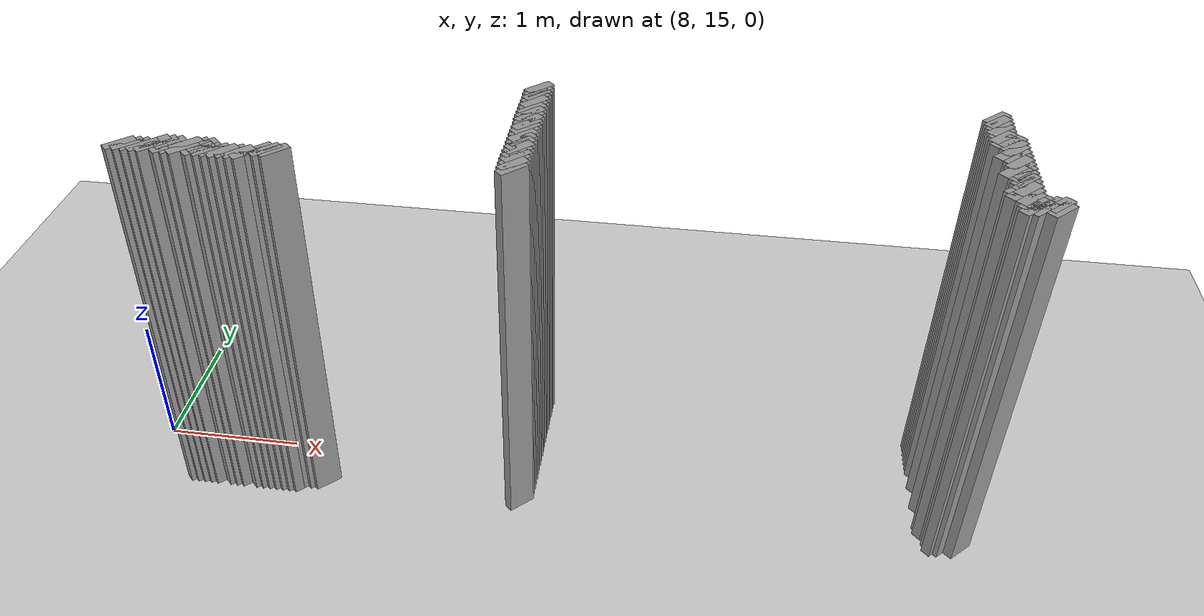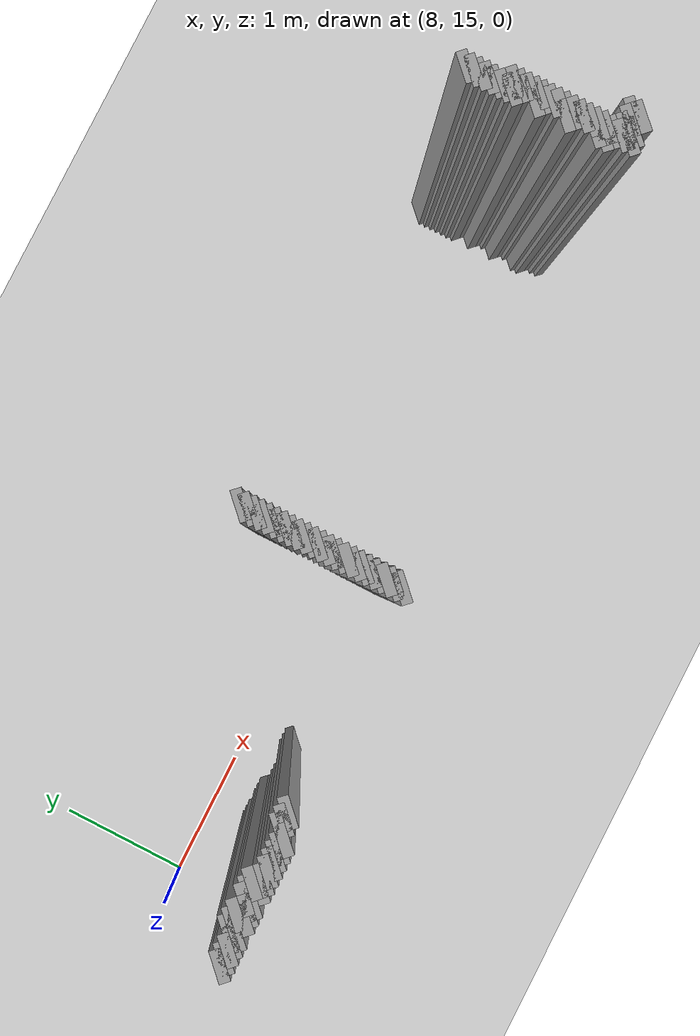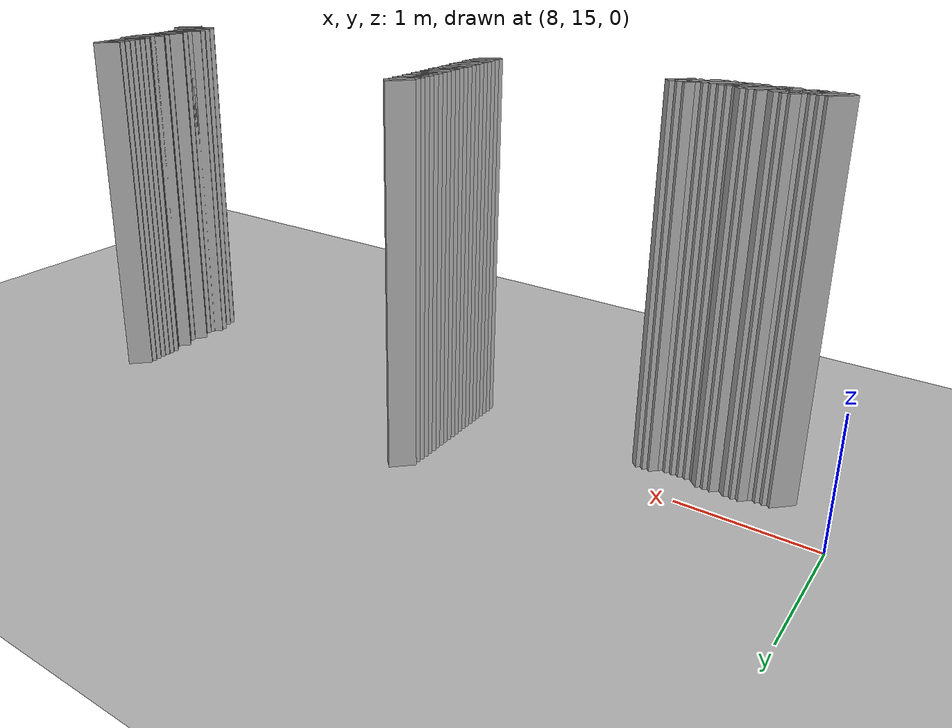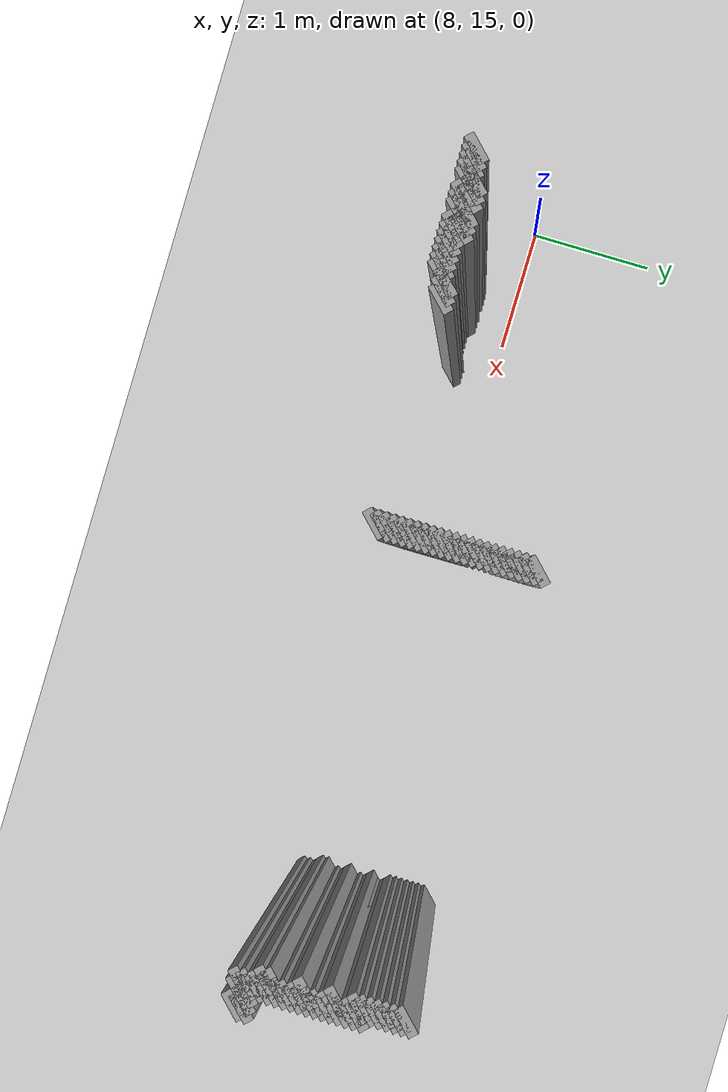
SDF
<sdf version="1.5">
 <world name="default">
  <include><uri>model://ground_plane</uri></include>
  <include><uri>model://sun</uri></include>
  <model name="grey_wall_545">
   <static>1</static>
   <link name="link">
    <pose>10.8 15.7  1.4 0 0 -0.785398163397</pose>
    <collision name="collision"><geometry><box><size>0.0707106781187 .2  2.8</size></box></geometry></collision>
    <visual name="visual">
     <cast_shadows>0</cast_shadows>
     <geometry><box><size>0.0707106781187 .2  2.8</size></box></geometry>
     <material>
      <script>
       <uri>model://grey_wall/materials/scripts</uri>
       <uri>model://grey_wall/materials/textures</uri>
       <name>vrc/grey_wall</name>
      </script>
     </material>
    </visual>
   </link>
  </model>
  <model name="grey_wall_546">
   <static>1</static>
   <link name="link">
    <pose>13.7 15.7  1.4 0 0 -0.785398163397</pose>
    <collision name="collision"><geometry><box><size>0.0707106781187 .2  2.8</size></box></geometry></collision>
    <visual name="visual">
     <cast_shadows>0</cast_shadows>
     <geometry><box><size>0.0707106781187 .2  2.8</size></box></geometry>
     <material>
      <script>
       <uri>model://grey_wall/materials/scripts</uri>
       <uri>model://grey_wall/materials/textures</uri>
       <name>vrc/grey_wall</name>
      </script>
     </material>
    </visual>
   </link>
  </model>
  <model name="grey_wall_547">
   <static>1</static>
   <link name="link">
    <pose>10.8 15.65  1.4 0 0 -0.785398163397</pose>
    <collision name="collision"><geometry><box><size>0.0707106781187 .2  2.8</size></box></geometry></collision>
    <visual name="visual">
     <cast_shadows>0</cast_shadows>
     <geometry><box><size>0.0707106781187 .2  2.8</size></box></geometry>
     <material>
      <script>
       <uri>model://grey_wall/materials/scripts</uri>
       <uri>model://grey_wall/materials/textures</uri>
       <name>vrc/grey_wall</name>
      </script>
     </material>
    </visual>
   </link>
  </model>
  <model name="grey_wall_548">
   <static>1</static>
   <link name="link">
    <pose>13.7 15.65  1.4 0 0 -0.785398163397</pose>
    <collision name="collision"><geometry><box><size>0.0707106781187 .2  2.8</size></box></geometry></collision>
    <visual name="visual">
     <cast_shadows>0</cast_shadows>
     <geometry><box><size>0.0707106781187 .2  2.8</size></box></geometry>
     <material>
      <script>
       <uri>model://grey_wall/materials/scripts</uri>
       <uri>model://grey_wall/materials/textures</uri>
       <name>vrc/grey_wall</name>
      </script>
     </material>
    </visual>
   </link>
  </model>
  <model name="grey_wall_549">
   <static>1</static>
   <link name="link">
    <pose>10.8 15.6  1.4 0 0 -0.785398163397</pose>
    <collision name="collision"><geometry><box><size>0.0707106781187 .2  2.8</size></box></geometry></collision>
    <visual name="visual">
     <cast_shadows>0</cast_shadows>
     <geometry><box><size>0.0707106781187 .2  2.8</size></box></geometry>
     <material>
      <script>
       <uri>model://grey_wall/materials/scripts</uri>
       <uri>model://grey_wall/materials/textures</uri>
       <name>vrc/grey_wall</name>
      </script>
     </material>
    </visual>
   </link>
  </model>
  <model name="grey_wall_550">
   <static>1</static>
   <link name="link">
    <pose>13.7 15.6  1.4 0 0 -0.785398163397</pose>
    <collision name="collision"><geometry><box><size>0.0707106781187 .2  2.8</size></box></geometry></collision>
    <visual name="visual">
     <cast_shadows>0</cast_shadows>
     <geometry><box><size>0.0707106781187 .2  2.8</size></box></geometry>
     <material>
      <script>
       <uri>model://grey_wall/materials/scripts</uri>
       <uri>model://grey_wall/materials/textures</uri>
       <name>vrc/grey_wall</name>
      </script>
     </material>
    </visual>
   </link>
  </model>
  <model name="grey_wall_551">
   <static>1</static>
   <link name="link">
    <pose>10.8 15.55  1.4 0 0 -0.785398163397</pose>
    <collision name="collision"><geometry><box><size>0.0707106781187 .2  2.8</size></box></geometry></collision>
    <visual name="visual">
     <cast_shadows>0</cast_shadows>
     <geometry><box><size>0.0707106781187 .2  2.8</size></box></geometry>
     <material>
      <script>
       <uri>model://grey_wall/materials/scripts</uri>
       <uri>model://grey_wall/materials/textures</uri>
       <name>vrc/grey_wall</name>
      </script>
     </material>
    </visual>
   </link>
  </model>
  <model name="grey_wall_552">
   <static>1</static>
   <link name="link">
    <pose>13.7 15.55  1.4 0 0 -0.785398163397</pose>
    <collision name="collision"><geometry><box><size>0.0707106781187 .2  2.8</size></box></geometry></collision>
    <visual name="visual">
     <cast_shadows>0</cast_shadows>
     <geometry><box><size>0.0707106781187 .2  2.8</size></box></geometry>
     <material>
      <script>
       <uri>model://grey_wall/materials/scripts</uri>
       <uri>model://grey_wall/materials/textures</uri>
       <name>vrc/grey_wall</name>
      </script>
     </material>
    </visual>
   </link>
  </model>
  <model name="grey_wall_553">
   <static>1</static>
   <link name="link">
    <pose>10.8 15.5  1.4 0 0 -0.785398163397</pose>
    <collision name="collision"><geometry><box><size>0.0707106781187 .2  2.8</size></box></geometry></collision>
    <visual name="visual">
     <cast_shadows>0</cast_shadows>
     <geometry><box><size>0.0707106781187 .2  2.8</size></box></geometry>
     <material>
      <script>
       <uri>model://grey_wall/materials/scripts</uri>
       <uri>model://grey_wall/materials/textures</uri>
       <name>vrc/grey_wall</name>
      </script>
     </material>
    </visual>
   </link>
  </model>
  <model name="grey_wall_554">
   <static>1</static>
   <link name="link">
    <pose>13.7 15.5  1.4 0 0 -0.785398163397</pose>
    <collision name="collision"><geometry><box><size>0.0707106781187 .2  2.8</size></box></geometry></collision>
    <visual name="visual">
     <cast_shadows>0</cast_shadows>
     <geometry><box><size>0.0707106781187 .2  2.8</size></box></geometry>
     <material>
      <script>
       <uri>model://grey_wall/materials/scripts</uri>
       <uri>model://grey_wall/materials/textures</uri>
       <name>vrc/grey_wall</name>
      </script>
     </material>
    </visual>
   </link>
  </model>
  <model name="grey_wall_555">
   <static>1</static>
   <link name="link">
    <pose>10.8 15.45  1.4 0 0 -0.785398163397</pose>
    <collision name="collision"><geometry><box><size>0.0707106781187 .2  2.8</size></box></geometry></collision>
    <visual name="visual">
     <cast_shadows>0</cast_shadows>
     <geometry><box><size>0.0707106781187 .2  2.8</size></box></geometry>
     <material>
      <script>
       <uri>model://grey_wall/materials/scripts</uri>
       <uri>model://grey_wall/materials/textures</uri>
       <name>vrc/grey_wall</name>
      </script>
     </material>
    </visual>
   </link>
  </model>
  <model name="grey_wall_556">
   <static>1</static>
   <link name="link">
    <pose>13.7 15.45  1.4 0 0 -0.785398163397</pose>
    <collision name="collision"><geometry><box><size>0.0707106781187 .2  2.8</size></box></geometry></collision>
    <visual name="visual">
     <cast_shadows>0</cast_shadows>
     <geometry><box><size>0.0707106781187 .2  2.8</size></box></geometry>
     <material>
      <script>
       <uri>model://grey_wall/materials/scripts</uri>
       <uri>model://grey_wall/materials/textures</uri>
       <name>vrc/grey_wall</name>
      </script>
     </material>
    </visual>
   </link>
  </model>
  <model name="grey_wall_557">
   <static>1</static>
   <link name="link">
    <pose>10.8 15.4  1.4 0 0 -0.785398163397</pose>
    <collision name="collision"><geometry><box><size>0.0707106781187 .2  2.8</size></box></geometry></collision>
    <visual name="visual">
     <cast_shadows>0</cast_shadows>
     <geometry><box><size>0.0707106781187 .2  2.8</size></box></geometry>
     <material>
      <script>
       <uri>model://grey_wall/materials/scripts</uri>
       <uri>model://grey_wall/materials/textures</uri>
       <name>vrc/grey_wall</name>
      </script>
     </material>
    </visual>
   </link>
  </model>
  <model name="grey_wall_558">
   <static>1</static>
   <link name="link">
    <pose>13.7 15.4  1.4 0 0 -0.785398163397</pose>
    <collision name="collision"><geometry><box><size>0.0707106781187 .2  2.8</size></box></geometry></collision>
    <visual name="visual">
     <cast_shadows>0</cast_shadows>
     <geometry><box><size>0.0707106781187 .2  2.8</size></box></geometry>
     <material>
      <script>
       <uri>model://grey_wall/materials/scripts</uri>
       <uri>model://grey_wall/materials/textures</uri>
       <name>vrc/grey_wall</name>
      </script>
     </material>
    </visual>
   </link>
  </model>
  <model name="grey_wall_559">
   <static>1</static>
   <link name="link">
    <pose>13.75 15.4  1.4 0 0 -0.785398163397</pose>
    <collision name="collision"><geometry><box><size>0.0707106781187 .2  2.8</size></box></geometry></collision>
    <visual name="visual">
     <cast_shadows>0</cast_shadows>
     <geometry><box><size>0.0707106781187 .2  2.8</size></box></geometry>
     <material>
      <script>
       <uri>model://grey_wall/materials/scripts</uri>
       <uri>model://grey_wall/materials/textures</uri>
       <name>vrc/grey_wall</name>
      </script>
     </material>
    </visual>
   </link>
  </model>
  <model name="grey_wall_560">
   <static>1</static>
   <link name="link">
    <pose>10.8 15.35  1.4 0 0 -0.785398163397</pose>
    <collision name="collision"><geometry><box><size>0.0707106781187 .2  2.8</size></box></geometry></collision>
    <visual name="visual">
     <cast_shadows>0</cast_shadows>
     <geometry><box><size>0.0707106781187 .2  2.8</size></box></geometry>
     <material>
      <script>
       <uri>model://grey_wall/materials/scripts</uri>
       <uri>model://grey_wall/materials/textures</uri>
       <name>vrc/grey_wall</name>
      </script>
     </material>
    </visual>
   </link>
  </model>
  <model name="grey_wall_561">
   <static>1</static>
   <link name="link">
    <pose>13.75 15.35  1.4 0 0 -0.785398163397</pose>
    <collision name="collision"><geometry><box><size>0.0707106781187 .2  2.8</size></box></geometry></collision>
    <visual name="visual">
     <cast_shadows>0</cast_shadows>
     <geometry><box><size>0.0707106781187 .2  2.8</size></box></geometry>
     <material>
      <script>
       <uri>model://grey_wall/materials/scripts</uri>
       <uri>model://grey_wall/materials/textures</uri>
       <name>vrc/grey_wall</name>
      </script>
     </material>
    </visual>
   </link>
  </model>
  <model name="grey_wall_562">
   <static>1</static>
   <link name="link">
    <pose>10.8 15.3  1.4 0 0 -0.785398163397</pose>
    <collision name="collision"><geometry><box><size>0.0707106781187 .2  2.8</size></box></geometry></collision>
    <visual name="visual">
     <cast_shadows>0</cast_shadows>
     <geometry><box><size>0.0707106781187 .2  2.8</size></box></geometry>
     <material>
      <script>
       <uri>model://grey_wall/materials/scripts</uri>
       <uri>model://grey_wall/materials/textures</uri>
       <name>vrc/grey_wall</name>
      </script>
     </material>
    </visual>
   </link>
  </model>
  <model name="grey_wall_563">
   <static>1</static>
   <link name="link">
    <pose>13.75 15.3  1.4 0 0 -0.785398163397</pose>
    <collision name="collision"><geometry><box><size>0.0707106781187 .2  2.8</size></box></geometry></collision>
    <visual name="visual">
     <cast_shadows>0</cast_shadows>
     <geometry><box><size>0.0707106781187 .2  2.8</size></box></geometry>
     <material>
      <script>
       <uri>model://grey_wall/materials/scripts</uri>
       <uri>model://grey_wall/materials/textures</uri>
       <name>vrc/grey_wall</name>
      </script>
     </material>
    </visual>
   </link>
  </model>
  <model name="grey_wall_564">
   <static>1</static>
   <link name="link">
    <pose>10.8 15.25  1.4 0 0 -0.785398163397</pose>
    <collision name="collision"><geometry><box><size>0.0707106781187 .2  2.8</size></box></geometry></collision>
    <visual name="visual">
     <cast_shadows>0</cast_shadows>
     <geometry><box><size>0.0707106781187 .2  2.8</size></box></geometry>
     <material>
      <script>
       <uri>model://grey_wall/materials/scripts</uri>
       <uri>model://grey_wall/materials/textures</uri>
       <name>vrc/grey_wall</name>
      </script>
     </material>
    </visual>
   </link>
  </model>
  <model name="grey_wall_565">
   <static>1</static>
   <link name="link">
    <pose>13.7 15.25  1.4 0 0 -0.785398163397</pose>
    <collision name="collision"><geometry><box><size>0.0707106781187 .2  2.8</size></box></geometry></collision>
    <visual name="visual">
     <cast_shadows>0</cast_shadows>
     <geometry><box><size>0.0707106781187 .2  2.8</size></box></geometry>
     <material>
      <script>
       <uri>model://grey_wall/materials/scripts</uri>
       <uri>model://grey_wall/materials/textures</uri>
       <name>vrc/grey_wall</name>
      </script>
     </material>
    </visual>
   </link>
  </model>
  <model name="grey_wall_566">
   <static>1</static>
   <link name="link">
    <pose>13.75 15.25  1.4 0 0 -0.785398163397</pose>
    <collision name="collision"><geometry><box><size>0.0707106781187 .2  2.8</size></box></geometry></collision>
    <visual name="visual">
     <cast_shadows>0</cast_shadows>
     <geometry><box><size>0.0707106781187 .2  2.8</size></box></geometry>
     <material>
      <script>
       <uri>model://grey_wall/materials/scripts</uri>
       <uri>model://grey_wall/materials/textures</uri>
       <name>vrc/grey_wall</name>
      </script>
     </material>
    </visual>
   </link>
  </model>
  <model name="grey_wall_567">
   <static>1</static>
   <link name="link">
    <pose>10.8 15.2  1.4 0 0 -0.785398163397</pose>
    <collision name="collision"><geometry><box><size>0.0707106781187 .2  2.8</size></box></geometry></collision>
    <visual name="visual">
     <cast_shadows>0</cast_shadows>
     <geometry><box><size>0.0707106781187 .2  2.8</size></box></geometry>
     <material>
      <script>
       <uri>model://grey_wall/materials/scripts</uri>
       <uri>model://grey_wall/materials/textures</uri>
       <name>vrc/grey_wall</name>
      </script>
     </material>
    </visual>
   </link>
  </model>
  <model name="grey_wall_568">
   <static>1</static>
   <link name="link">
    <pose>13.75 15.2  1.4 0 0 -0.785398163397</pose>
    <collision name="collision"><geometry><box><size>0.0707106781187 .2  2.8</size></box></geometry></collision>
    <visual name="visual">
     <cast_shadows>0</cast_shadows>
     <geometry><box><size>0.0707106781187 .2  2.8</size></box></geometry>
     <material>
      <script>
       <uri>model://grey_wall/materials/scripts</uri>
       <uri>model://grey_wall/materials/textures</uri>
       <name>vrc/grey_wall</name>
      </script>
     </material>
    </visual>
   </link>
  </model>
  <model name="grey_wall_569">
   <static>1</static>
   <link name="link">
    <pose>10.8 15.15  1.4 0 0 -0.785398163397</pose>
    <collision name="collision"><geometry><box><size>0.0707106781187 .2  2.8</size></box></geometry></collision>
    <visual name="visual">
     <cast_shadows>0</cast_shadows>
     <geometry><box><size>0.0707106781187 .2  2.8</size></box></geometry>
     <material>
      <script>
       <uri>model://grey_wall/materials/scripts</uri>
       <uri>model://grey_wall/materials/textures</uri>
       <name>vrc/grey_wall</name>
      </script>
     </material>
    </visual>
   </link>
  </model>
  <model name="grey_wall_570">
   <static>1</static>
   <link name="link">
    <pose>13.75 15.15  1.4 0 0 -0.785398163397</pose>
    <collision name="collision"><geometry><box><size>0.0707106781187 .2  2.8</size></box></geometry></collision>
    <visual name="visual">
     <cast_shadows>0</cast_shadows>
     <geometry><box><size>0.0707106781187 .2  2.8</size></box></geometry>
     <material>
      <script>
       <uri>model://grey_wall/materials/scripts</uri>
       <uri>model://grey_wall/materials/textures</uri>
       <name>vrc/grey_wall</name>
      </script>
     </material>
    </visual>
   </link>
  </model>
  <model name="grey_wall_571">
   <static>1</static>
   <link name="link">
    <pose>10.8 15.1  1.4 0 0 -0.785398163397</pose>
    <collision name="collision"><geometry><box><size>0.0707106781187 .2  2.8</size></box></geometry></collision>
    <visual name="visual">
     <cast_shadows>0</cast_shadows>
     <geometry><box><size>0.0707106781187 .2  2.8</size></box></geometry>
     <material>
      <script>
       <uri>model://grey_wall/materials/scripts</uri>
       <uri>model://grey_wall/materials/textures</uri>
       <name>vrc/grey_wall</name>
      </script>
     </material>
    </visual>
   </link>
  </model>
  <model name="grey_wall_572">
   <static>1</static>
   <link name="link">
    <pose>13.75 15.1  1.4 0 0 -0.785398163397</pose>
    <collision name="collision"><geometry><box><size>0.0707106781187 .2  2.8</size></box></geometry></collision>
    <visual name="visual">
     <cast_shadows>0</cast_shadows>
     <geometry><box><size>0.0707106781187 .2  2.8</size></box></geometry>
     <material>
      <script>
       <uri>model://grey_wall/materials/scripts</uri>
       <uri>model://grey_wall/materials/textures</uri>
       <name>vrc/grey_wall</name>
      </script>
     </material>
    </visual>
   </link>
  </model>
  <model name="grey_wall_573">
   <static>1</static>
   <link name="link">
    <pose>10.8 15.05  1.4 0 0 -0.785398163397</pose>
    <collision name="collision"><geometry><box><size>0.0707106781187 .2  2.8</size></box></geometry></collision>
    <visual name="visual">
     <cast_shadows>0</cast_shadows>
     <geometry><box><size>0.0707106781187 .2  2.8</size></box></geometry>
     <material>
      <script>
       <uri>model://grey_wall/materials/scripts</uri>
       <uri>model://grey_wall/materials/textures</uri>
       <name>vrc/grey_wall</name>
      </script>
     </material>
    </visual>
   </link>
  </model>
  <model name="grey_wall_574">
   <static>1</static>
   <link name="link">
    <pose>13.7 15.05  1.4 0 0 -0.785398163397</pose>
    <collision name="collision"><geometry><box><size>0.0707106781187 .2  2.8</size></box></geometry></collision>
    <visual name="visual">
     <cast_shadows>0</cast_shadows>
     <geometry><box><size>0.0707106781187 .2  2.8</size></box></geometry>
     <material>
      <script>
       <uri>model://grey_wall/materials/scripts</uri>
       <uri>model://grey_wall/materials/textures</uri>
       <name>vrc/grey_wall</name>
      </script>
     </material>
    </visual>
   </link>
  </model>
  <model name="grey_wall_575">
   <static>1</static>
   <link name="link">
    <pose>13.75 15.05  1.4 0 0 -0.785398163397</pose>
    <collision name="collision"><geometry><box><size>0.0707106781187 .2  2.8</size></box></geometry></collision>
    <visual name="visual">
     <cast_shadows>0</cast_shadows>
     <geometry><box><size>0.0707106781187 .2  2.8</size></box></geometry>
     <material>
      <script>
       <uri>model://grey_wall/materials/scripts</uri>
       <uri>model://grey_wall/materials/textures</uri>
       <name>vrc/grey_wall</name>
      </script>
     </material>
    </visual>
   </link>
  </model>
  <model name="grey_wall_576">
   <static>1</static>
   <link name="link">
    <pose>10.8 15.0  1.4 0 0 -0.785398163397</pose>
    <collision name="collision"><geometry><box><size>0.0707106781187 .2  2.8</size></box></geometry></collision>
    <visual name="visual">
     <cast_shadows>0</cast_shadows>
     <geometry><box><size>0.0707106781187 .2  2.8</size></box></geometry>
     <material>
      <script>
       <uri>model://grey_wall/materials/scripts</uri>
       <uri>model://grey_wall/materials/textures</uri>
       <name>vrc/grey_wall</name>
      </script>
     </material>
    </visual>
   </link>
  </model>
  <model name="grey_wall_577">
   <static>1</static>
   <link name="link">
    <pose>13.75 15.0  1.4 0 0 -0.785398163397</pose>
    <collision name="collision"><geometry><box><size>0.0707106781187 .2  2.8</size></box></geometry></collision>
    <visual name="visual">
     <cast_shadows>0</cast_shadows>
     <geometry><box><size>0.0707106781187 .2  2.8</size></box></geometry>
     <material>
      <script>
       <uri>model://grey_wall/materials/scripts</uri>
       <uri>model://grey_wall/materials/textures</uri>
       <name>vrc/grey_wall</name>
      </script>
     </material>
    </visual>
   </link>
  </model>
  <model name="grey_wall_578">
   <static>1</static>
   <link name="link">
    <pose>10.8 14.95  1.4 0 0 -0.785398163397</pose>
    <collision name="collision"><geometry><box><size>0.0707106781187 .2  2.8</size></box></geometry></collision>
    <visual name="visual">
     <cast_shadows>0</cast_shadows>
     <geometry><box><size>0.0707106781187 .2  2.8</size></box></geometry>
     <material>
      <script>
       <uri>model://grey_wall/materials/scripts</uri>
       <uri>model://grey_wall/materials/textures</uri>
       <name>vrc/grey_wall</name>
      </script>
     </material>
    </visual>
   </link>
  </model>
  <model name="grey_wall_579">
   <static>1</static>
   <link name="link">
    <pose>13.75 14.95  1.4 0 0 -0.785398163397</pose>
    <collision name="collision"><geometry><box><size>0.0707106781187 .2  2.8</size></box></geometry></collision>
    <visual name="visual">
     <cast_shadows>0</cast_shadows>
     <geometry><box><size>0.0707106781187 .2  2.8</size></box></geometry>
     <material>
      <script>
       <uri>model://grey_wall/materials/scripts</uri>
       <uri>model://grey_wall/materials/textures</uri>
       <name>vrc/grey_wall</name>
      </script>
     </material>
    </visual>
   </link>
  </model>
  <model name="grey_wall_580">
   <static>1</static>
   <link name="link">
    <pose>10.8 14.9  1.4 0 0 -0.785398163397</pose>
    <collision name="collision"><geometry><box><size>0.0707106781187 .2  2.8</size></box></geometry></collision>
    <visual name="visual">
     <cast_shadows>0</cast_shadows>
     <geometry><box><size>0.0707106781187 .2  2.8</size></box></geometry>
     <material>
      <script>
       <uri>model://grey_wall/materials/scripts</uri>
       <uri>model://grey_wall/materials/textures</uri>
       <name>vrc/grey_wall</name>
      </script>
     </material>
    </visual>
   </link>
  </model>
  <model name="grey_wall_581">
   <static>1</static>
   <link name="link">
    <pose>13.75 14.9  1.4 0 0 -0.785398163397</pose>
    <collision name="collision"><geometry><box><size>0.0707106781187 .2  2.8</size></box></geometry></collision>
    <visual name="visual">
     <cast_shadows>0</cast_shadows>
     <geometry><box><size>0.0707106781187 .2  2.8</size></box></geometry>
     <material>
      <script>
       <uri>model://grey_wall/materials/scripts</uri>
       <uri>model://grey_wall/materials/textures</uri>
       <name>vrc/grey_wall</name>
      </script>
     </material>
    </visual>
   </link>
  </model>
  <model name="grey_wall_582">
   <static>1</static>
   <link name="link">
    <pose>10.8 14.85  1.4 0 0 -0.785398163397</pose>
    <collision name="collision"><geometry><box><size>0.0707106781187 .2  2.8</size></box></geometry></collision>
    <visual name="visual">
     <cast_shadows>0</cast_shadows>
     <geometry><box><size>0.0707106781187 .2  2.8</size></box></geometry>
     <material>
      <script>
       <uri>model://grey_wall/materials/scripts</uri>
       <uri>model://grey_wall/materials/textures</uri>
       <name>vrc/grey_wall</name>
      </script>
     </material>
    </visual>
   </link>
  </model>
  <model name="grey_wall_583">
   <static>1</static>
   <link name="link">
    <pose>13.7 14.85  1.4 0 0 -0.785398163397</pose>
    <collision name="collision"><geometry><box><size>0.0707106781187 .2  2.8</size></box></geometry></collision>
    <visual name="visual">
     <cast_shadows>0</cast_shadows>
     <geometry><box><size>0.0707106781187 .2  2.8</size></box></geometry>
     <material>
      <script>
       <uri>model://grey_wall/materials/scripts</uri>
       <uri>model://grey_wall/materials/textures</uri>
       <name>vrc/grey_wall</name>
      </script>
     </material>
    </visual>
   </link>
  </model>
  <model name="grey_wall_584">
   <static>1</static>
   <link name="link">
    <pose>13.75 14.85  1.4 0 0 -0.785398163397</pose>
    <collision name="collision"><geometry><box><size>0.0707106781187 .2  2.8</size></box></geometry></collision>
    <visual name="visual">
     <cast_shadows>0</cast_shadows>
     <geometry><box><size>0.0707106781187 .2  2.8</size></box></geometry>
     <material>
      <script>
       <uri>model://grey_wall/materials/scripts</uri>
       <uri>model://grey_wall/materials/textures</uri>
       <name>vrc/grey_wall</name>
      </script>
     </material>
    </visual>
   </link>
  </model>
  <model name="grey_wall_585">
   <static>1</static>
   <link name="link">
    <pose>10.8 14.8  1.4 0 0 -0.785398163397</pose>
    <collision name="collision"><geometry><box><size>0.0707106781187 .2  2.8</size></box></geometry></collision>
    <visual name="visual">
     <cast_shadows>0</cast_shadows>
     <geometry><box><size>0.0707106781187 .2  2.8</size></box></geometry>
     <material>
      <script>
       <uri>model://grey_wall/materials/scripts</uri>
       <uri>model://grey_wall/materials/textures</uri>
       <name>vrc/grey_wall</name>
      </script>
     </material>
    </visual>
   </link>
  </model>
  <model name="grey_wall_586">
   <static>1</static>
   <link name="link">
    <pose>13.7 14.8  1.4 0 0 -0.785398163397</pose>
    <collision name="collision"><geometry><box><size>0.0707106781187 .2  2.8</size></box></geometry></collision>
    <visual name="visual">
     <cast_shadows>0</cast_shadows>
     <geometry><box><size>0.0707106781187 .2  2.8</size></box></geometry>
     <material>
      <script>
       <uri>model://grey_wall/materials/scripts</uri>
       <uri>model://grey_wall/materials/textures</uri>
       <name>vrc/grey_wall</name>
      </script>
     </material>
    </visual>
   </link>
  </model>
  <model name="grey_wall_587">
   <static>1</static>
   <link name="link">
    <pose>13.75 14.8  1.4 0 0 -0.785398163397</pose>
    <collision name="collision"><geometry><box><size>0.0707106781187 .2  2.8</size></box></geometry></collision>
    <visual name="visual">
     <cast_shadows>0</cast_shadows>
     <geometry><box><size>0.0707106781187 .2  2.8</size></box></geometry>
     <material>
      <script>
       <uri>model://grey_wall/materials/scripts</uri>
       <uri>model://grey_wall/materials/textures</uri>
       <name>vrc/grey_wall</name>
      </script>
     </material>
    </visual>
   </link>
  </model>
  <model name="grey_wall_588">
   <static>1</static>
   <link name="link">
    <pose>10.8 14.75  1.4 0 0 -0.785398163397</pose>
    <collision name="collision"><geometry><box><size>0.0707106781187 .2  2.8</size></box></geometry></collision>
    <visual name="visual">
     <cast_shadows>0</cast_shadows>
     <geometry><box><size>0.0707106781187 .2  2.8</size></box></geometry>
     <material>
      <script>
       <uri>model://grey_wall/materials/scripts</uri>
       <uri>model://grey_wall/materials/textures</uri>
       <name>vrc/grey_wall</name>
      </script>
     </material>
    </visual>
   </link>
  </model>
  <model name="grey_wall_589">
   <static>1</static>
   <link name="link">
    <pose>13.75 14.75  1.4 0 0 -0.785398163397</pose>
    <collision name="collision"><geometry><box><size>0.0707106781187 .2  2.8</size></box></geometry></collision>
    <visual name="visual">
     <cast_shadows>0</cast_shadows>
     <geometry><box><size>0.0707106781187 .2  2.8</size></box></geometry>
     <material>
      <script>
       <uri>model://grey_wall/materials/scripts</uri>
       <uri>model://grey_wall/materials/textures</uri>
       <name>vrc/grey_wall</name>
      </script>
     </material>
    </visual>
   </link>
  </model>
  <model name="grey_wall_590">
   <static>1</static>
   <link name="link">
    <pose>10.8 14.7  1.4 0 0 -0.785398163397</pose>
    <collision name="collision"><geometry><box><size>0.0707106781187 .2  2.8</size></box></geometry></collision>
    <visual name="visual">
     <cast_shadows>0</cast_shadows>
     <geometry><box><size>0.0707106781187 .2  2.8</size></box></geometry>
     <material>
      <script>
       <uri>model://grey_wall/materials/scripts</uri>
       <uri>model://grey_wall/materials/textures</uri>
       <name>vrc/grey_wall</name>
      </script>
     </material>
    </visual>
   </link>
  </model>
  <model name="grey_wall_591">
   <static>1</static>
   <link name="link">
    <pose>13.75 14.7  1.4 0 0 -0.785398163397</pose>
    <collision name="collision"><geometry><box><size>0.0707106781187 .2  2.8</size></box></geometry></collision>
    <visual name="visual">
     <cast_shadows>0</cast_shadows>
     <geometry><box><size>0.0707106781187 .2  2.8</size></box></geometry>
     <material>
      <script>
       <uri>model://grey_wall/materials/scripts</uri>
       <uri>model://grey_wall/materials/textures</uri>
       <name>vrc/grey_wall</name>
      </script>
     </material>
    </visual>
   </link>
  </model>
  <model name="grey_wall_592">
   <static>1</static>
   <link name="link">
    <pose>13.8 14.7  1.4 0 0 -0.785398163397</pose>
    <collision name="collision"><geometry><box><size>0.0707106781187 .2  2.8</size></box></geometry></collision>
    <visual name="visual">
     <cast_shadows>0</cast_shadows>
     <geometry><box><size>0.0707106781187 .2  2.8</size></box></geometry>
     <material>
      <script>
       <uri>model://grey_wall/materials/scripts</uri>
       <uri>model://grey_wall/materials/textures</uri>
       <name>vrc/grey_wall</name>
      </script>
     </material>
    </visual>
   </link>
  </model>
  <model name="grey_wall_593">
   <static>1</static>
   <link name="link">
    <pose>13.85 14.7  1.4 0 0 -0.785398163397</pose>
    <collision name="collision"><geometry><box><size>0.0707106781187 .2  2.8</size></box></geometry></collision>
    <visual name="visual">
     <cast_shadows>0</cast_shadows>
     <geometry><box><size>0.0707106781187 .2  2.8</size></box></geometry>
     <material>
      <script>
       <uri>model://grey_wall/materials/scripts</uri>
       <uri>model://grey_wall/materials/textures</uri>
       <name>vrc/grey_wall</name>
      </script>
     </material>
    </visual>
   </link>
  </model>
  <model name="grey_wall_594">
   <static>1</static>
   <link name="link">
    <pose>13.9 14.7  1.4 0 0 -0.785398163397</pose>
    <collision name="collision"><geometry><box><size>0.0707106781187 .2  2.8</size></box></geometry></collision>
    <visual name="visual">
     <cast_shadows>0</cast_shadows>
     <geometry><box><size>0.0707106781187 .2  2.8</size></box></geometry>
     <material>
      <script>
       <uri>model://grey_wall/materials/scripts</uri>
       <uri>model://grey_wall/materials/textures</uri>
       <name>vrc/grey_wall</name>
      </script>
     </material>
    </visual>
   </link>
  </model>
  <model name="grey_wall_595">
   <static>1</static>
   <link name="link">
    <pose>8.6 14.65  1.4 0 0 -0.785398163397</pose>
    <collision name="collision"><geometry><box><size>0.0707106781187 .2  2.8</size></box></geometry></collision>
    <visual name="visual">
     <cast_shadows>0</cast_shadows>
     <geometry><box><size>0.0707106781187 .2  2.8</size></box></geometry>
     <material>
      <script>
       <uri>model://grey_wall/materials/scripts</uri>
       <uri>model://grey_wall/materials/textures</uri>
       <name>vrc/grey_wall</name>
      </script>
     </material>
    </visual>
   </link>
  </model>
  <model name="grey_wall_596">
   <static>1</static>
   <link name="link">
    <pose>8.65 14.65  1.4 0 0 -0.785398163397</pose>
    <collision name="collision"><geometry><box><size>0.0707106781187 .2  2.8</size></box></geometry></collision>
    <visual name="visual">
     <cast_shadows>0</cast_shadows>
     <geometry><box><size>0.0707106781187 .2  2.8</size></box></geometry>
     <material>
      <script>
       <uri>model://grey_wall/materials/scripts</uri>
       <uri>model://grey_wall/materials/textures</uri>
       <name>vrc/grey_wall</name>
      </script>
     </material>
    </visual>
   </link>
  </model>
  <model name="grey_wall_597">
   <static>1</static>
   <link name="link">
    <pose>8.7 14.65  1.4 0 0 -0.785398163397</pose>
    <collision name="collision"><geometry><box><size>0.0707106781187 .2  2.8</size></box></geometry></collision>
    <visual name="visual">
     <cast_shadows>0</cast_shadows>
     <geometry><box><size>0.0707106781187 .2  2.8</size></box></geometry>
     <material>
      <script>
       <uri>model://grey_wall/materials/scripts</uri>
       <uri>model://grey_wall/materials/textures</uri>
       <name>vrc/grey_wall</name>
      </script>
     </material>
    </visual>
   </link>
  </model>
  <model name="grey_wall_598">
   <static>1</static>
   <link name="link">
    <pose>8.8 14.65  1.4 0 0 -0.785398163397</pose>
    <collision name="collision"><geometry><box><size>0.0707106781187 .2  2.8</size></box></geometry></collision>
    <visual name="visual">
     <cast_shadows>0</cast_shadows>
     <geometry><box><size>0.0707106781187 .2  2.8</size></box></geometry>
     <material>
      <script>
       <uri>model://grey_wall/materials/scripts</uri>
       <uri>model://grey_wall/materials/textures</uri>
       <name>vrc/grey_wall</name>
      </script>
     </material>
    </visual>
   </link>
  </model>
  <model name="grey_wall_599">
   <static>1</static>
   <link name="link">
    <pose>8.85 14.65  1.4 0 0 -0.785398163397</pose>
    <collision name="collision"><geometry><box><size>0.0707106781187 .2  2.8</size></box></geometry></collision>
    <visual name="visual">
     <cast_shadows>0</cast_shadows>
     <geometry><box><size>0.0707106781187 .2  2.8</size></box></geometry>
     <material>
      <script>
       <uri>model://grey_wall/materials/scripts</uri>
       <uri>model://grey_wall/materials/textures</uri>
       <name>vrc/grey_wall</name>
      </script>
     </material>
    </visual>
   </link>
  </model>
  <model name="grey_wall_600">
   <static>1</static>
   <link name="link">
    <pose>8.9 14.65  1.4 0 0 -0.785398163397</pose>
    <collision name="collision"><geometry><box><size>0.0707106781187 .2  2.8</size></box></geometry></collision>
    <visual name="visual">
     <cast_shadows>0</cast_shadows>
     <geometry><box><size>0.0707106781187 .2  2.8</size></box></geometry>
     <material>
      <script>
       <uri>model://grey_wall/materials/scripts</uri>
       <uri>model://grey_wall/materials/textures</uri>
       <name>vrc/grey_wall</name>
      </script>
     </material>
    </visual>
   </link>
  </model>
  <model name="grey_wall_601">
   <static>1</static>
   <link name="link">
    <pose>9.25 14.65  1.4 0 0 -0.785398163397</pose>
    <collision name="collision"><geometry><box><size>0.0707106781187 .2  2.8</size></box></geometry></collision>
    <visual name="visual">
     <cast_shadows>0</cast_shadows>
     <geometry><box><size>0.0707106781187 .2  2.8</size></box></geometry>
     <material>
      <script>
       <uri>model://grey_wall/materials/scripts</uri>
       <uri>model://grey_wall/materials/textures</uri>
       <name>vrc/grey_wall</name>
      </script>
     </material>
    </visual>
   </link>
  </model>
  <model name="grey_wall_602">
   <static>1</static>
   <link name="link">
    <pose>9.3 14.65  1.4 0 0 -0.785398163397</pose>
    <collision name="collision"><geometry><box><size>0.0707106781187 .2  2.8</size></box></geometry></collision>
    <visual name="visual">
     <cast_shadows>0</cast_shadows>
     <geometry><box><size>0.0707106781187 .2  2.8</size></box></geometry>
     <material>
      <script>
       <uri>model://grey_wall/materials/scripts</uri>
       <uri>model://grey_wall/materials/textures</uri>
       <name>vrc/grey_wall</name>
      </script>
     </material>
    </visual>
   </link>
  </model>
  <model name="grey_wall_603">
   <static>1</static>
   <link name="link">
    <pose>9.35 14.65  1.4 0 0 -0.785398163397</pose>
    <collision name="collision"><geometry><box><size>0.0707106781187 .2  2.8</size></box></geometry></collision>
    <visual name="visual">
     <cast_shadows>0</cast_shadows>
     <geometry><box><size>0.0707106781187 .2  2.8</size></box></geometry>
     <material>
      <script>
       <uri>model://grey_wall/materials/scripts</uri>
       <uri>model://grey_wall/materials/textures</uri>
       <name>vrc/grey_wall</name>
      </script>
     </material>
    </visual>
   </link>
  </model>
  <model name="grey_wall_604">
   <static>1</static>
   <link name="link">
    <pose>10.8 14.65  1.4 0 0 -0.785398163397</pose>
    <collision name="collision"><geometry><box><size>0.0707106781187 .2  2.8</size></box></geometry></collision>
    <visual name="visual">
     <cast_shadows>0</cast_shadows>
     <geometry><box><size>0.0707106781187 .2  2.8</size></box></geometry>
     <material>
      <script>
       <uri>model://grey_wall/materials/scripts</uri>
       <uri>model://grey_wall/materials/textures</uri>
       <name>vrc/grey_wall</name>
      </script>
     </material>
    </visual>
   </link>
  </model>
  <model name="grey_wall_605">
   <static>1</static>
   <link name="link">
    <pose>13.75 14.65  1.4 0 0 -0.785398163397</pose>
    <collision name="collision"><geometry><box><size>0.0707106781187 .2  2.8</size></box></geometry></collision>
    <visual name="visual">
     <cast_shadows>0</cast_shadows>
     <geometry><box><size>0.0707106781187 .2  2.8</size></box></geometry>
     <material>
      <script>
       <uri>model://grey_wall/materials/scripts</uri>
       <uri>model://grey_wall/materials/textures</uri>
       <name>vrc/grey_wall</name>
      </script>
     </material>
    </visual>
   </link>
  </model>
  <model name="grey_wall_606">
   <static>1</static>
   <link name="link">
    <pose>13.8 14.65  1.4 0 0 -0.785398163397</pose>
    <collision name="collision"><geometry><box><size>0.0707106781187 .2  2.8</size></box></geometry></collision>
    <visual name="visual">
     <cast_shadows>0</cast_shadows>
     <geometry><box><size>0.0707106781187 .2  2.8</size></box></geometry>
     <material>
      <script>
       <uri>model://grey_wall/materials/scripts</uri>
       <uri>model://grey_wall/materials/textures</uri>
       <name>vrc/grey_wall</name>
      </script>
     </material>
    </visual>
   </link>
  </model>
  <model name="grey_wall_607">
   <static>1</static>
   <link name="link">
    <pose>13.9 14.65  1.4 0 0 -0.785398163397</pose>
    <collision name="collision"><geometry><box><size>0.0707106781187 .2  2.8</size></box></geometry></collision>
    <visual name="visual">
     <cast_shadows>0</cast_shadows>
     <geometry><box><size>0.0707106781187 .2  2.8</size></box></geometry>
     <material>
      <script>
       <uri>model://grey_wall/materials/scripts</uri>
       <uri>model://grey_wall/materials/textures</uri>
       <name>vrc/grey_wall</name>
      </script>
     </material>
    </visual>
   </link>
  </model>
  <model name="grey_wall_608">
   <static>1</static>
   <link name="link">
    <pose>8.4 14.6  1.4 0 0 -0.785398163397</pose>
    <collision name="collision"><geometry><box><size>0.0707106781187 .2  2.8</size></box></geometry></collision>
    <visual name="visual">
     <cast_shadows>0</cast_shadows>
     <geometry><box><size>0.0707106781187 .2  2.8</size></box></geometry>
     <material>
      <script>
       <uri>model://grey_wall/materials/scripts</uri>
       <uri>model://grey_wall/materials/textures</uri>
       <name>vrc/grey_wall</name>
      </script>
     </material>
    </visual>
   </link>
  </model>
  <model name="grey_wall_609">
   <static>1</static>
   <link name="link">
    <pose>8.45 14.6  1.4 0 0 -0.785398163397</pose>
    <collision name="collision"><geometry><box><size>0.0707106781187 .2  2.8</size></box></geometry></collision>
    <visual name="visual">
     <cast_shadows>0</cast_shadows>
     <geometry><box><size>0.0707106781187 .2  2.8</size></box></geometry>
     <material>
      <script>
       <uri>model://grey_wall/materials/scripts</uri>
       <uri>model://grey_wall/materials/textures</uri>
       <name>vrc/grey_wall</name>
      </script>
     </material>
    </visual>
   </link>
  </model>
  <model name="grey_wall_610">
   <static>1</static>
   <link name="link">
    <pose>8.5 14.6  1.4 0 0 -0.785398163397</pose>
    <collision name="collision"><geometry><box><size>0.0707106781187 .2  2.8</size></box></geometry></collision>
    <visual name="visual">
     <cast_shadows>0</cast_shadows>
     <geometry><box><size>0.0707106781187 .2  2.8</size></box></geometry>
     <material>
      <script>
       <uri>model://grey_wall/materials/scripts</uri>
       <uri>model://grey_wall/materials/textures</uri>
       <name>vrc/grey_wall</name>
      </script>
     </material>
    </visual>
   </link>
  </model>
  <model name="grey_wall_611">
   <static>1</static>
   <link name="link">
    <pose>8.55 14.6  1.4 0 0 -0.785398163397</pose>
    <collision name="collision"><geometry><box><size>0.0707106781187 .2  2.8</size></box></geometry></collision>
    <visual name="visual">
     <cast_shadows>0</cast_shadows>
     <geometry><box><size>0.0707106781187 .2  2.8</size></box></geometry>
     <material>
      <script>
       <uri>model://grey_wall/materials/scripts</uri>
       <uri>model://grey_wall/materials/textures</uri>
       <name>vrc/grey_wall</name>
      </script>
     </material>
    </visual>
   </link>
  </model>
  <model name="grey_wall_612">
   <static>1</static>
   <link name="link">
    <pose>8.6 14.6  1.4 0 0 -0.785398163397</pose>
    <collision name="collision"><geometry><box><size>0.0707106781187 .2  2.8</size></box></geometry></collision>
    <visual name="visual">
     <cast_shadows>0</cast_shadows>
     <geometry><box><size>0.0707106781187 .2  2.8</size></box></geometry>
     <material>
      <script>
       <uri>model://grey_wall/materials/scripts</uri>
       <uri>model://grey_wall/materials/textures</uri>
       <name>vrc/grey_wall</name>
      </script>
     </material>
    </visual>
   </link>
  </model>
  <model name="grey_wall_613">
   <static>1</static>
   <link name="link">
    <pose>8.7 14.6  1.4 0 0 -0.785398163397</pose>
    <collision name="collision"><geometry><box><size>0.0707106781187 .2  2.8</size></box></geometry></collision>
    <visual name="visual">
     <cast_shadows>0</cast_shadows>
     <geometry><box><size>0.0707106781187 .2  2.8</size></box></geometry>
     <material>
      <script>
       <uri>model://grey_wall/materials/scripts</uri>
       <uri>model://grey_wall/materials/textures</uri>
       <name>vrc/grey_wall</name>
      </script>
     </material>
    </visual>
   </link>
  </model>
  <model name="grey_wall_614">
   <static>1</static>
   <link name="link">
    <pose>8.75 14.6  1.4 0 0 -0.785398163397</pose>
    <collision name="collision"><geometry><box><size>0.0707106781187 .2  2.8</size></box></geometry></collision>
    <visual name="visual">
     <cast_shadows>0</cast_shadows>
     <geometry><box><size>0.0707106781187 .2  2.8</size></box></geometry>
     <material>
      <script>
       <uri>model://grey_wall/materials/scripts</uri>
       <uri>model://grey_wall/materials/textures</uri>
       <name>vrc/grey_wall</name>
      </script>
     </material>
    </visual>
   </link>
  </model>
  <model name="grey_wall_615">
   <static>1</static>
   <link name="link">
    <pose>8.8 14.6  1.4 0 0 -0.785398163397</pose>
    <collision name="collision"><geometry><box><size>0.0707106781187 .2  2.8</size></box></geometry></collision>
    <visual name="visual">
     <cast_shadows>0</cast_shadows>
     <geometry><box><size>0.0707106781187 .2  2.8</size></box></geometry>
     <material>
      <script>
       <uri>model://grey_wall/materials/scripts</uri>
       <uri>model://grey_wall/materials/textures</uri>
       <name>vrc/grey_wall</name>
      </script>
     </material>
    </visual>
   </link>
  </model>
  <model name="grey_wall_616">
   <static>1</static>
   <link name="link">
    <pose>8.9 14.6  1.4 0 0 -0.785398163397</pose>
    <collision name="collision"><geometry><box><size>0.0707106781187 .2  2.8</size></box></geometry></collision>
    <visual name="visual">
     <cast_shadows>0</cast_shadows>
     <geometry><box><size>0.0707106781187 .2  2.8</size></box></geometry>
     <material>
      <script>
       <uri>model://grey_wall/materials/scripts</uri>
       <uri>model://grey_wall/materials/textures</uri>
       <name>vrc/grey_wall</name>
      </script>
     </material>
    </visual>
   </link>
  </model>
  <model name="grey_wall_617">
   <static>1</static>
   <link name="link">
    <pose>8.95 14.6  1.4 0 0 -0.785398163397</pose>
    <collision name="collision"><geometry><box><size>0.0707106781187 .2  2.8</size></box></geometry></collision>
    <visual name="visual">
     <cast_shadows>0</cast_shadows>
     <geometry><box><size>0.0707106781187 .2  2.8</size></box></geometry>
     <material>
      <script>
       <uri>model://grey_wall/materials/scripts</uri>
       <uri>model://grey_wall/materials/textures</uri>
       <name>vrc/grey_wall</name>
      </script>
     </material>
    </visual>
   </link>
  </model>
  <model name="grey_wall_618">
   <static>1</static>
   <link name="link">
    <pose>9.0 14.6  1.4 0 0 -0.785398163397</pose>
    <collision name="collision"><geometry><box><size>0.0707106781187 .2  2.8</size></box></geometry></collision>
    <visual name="visual">
     <cast_shadows>0</cast_shadows>
     <geometry><box><size>0.0707106781187 .2  2.8</size></box></geometry>
     <material>
      <script>
       <uri>model://grey_wall/materials/scripts</uri>
       <uri>model://grey_wall/materials/textures</uri>
       <name>vrc/grey_wall</name>
      </script>
     </material>
    </visual>
   </link>
  </model>
  <model name="grey_wall_619">
   <static>1</static>
   <link name="link">
    <pose>9.05 14.6  1.4 0 0 -0.785398163397</pose>
    <collision name="collision"><geometry><box><size>0.0707106781187 .2  2.8</size></box></geometry></collision>
    <visual name="visual">
     <cast_shadows>0</cast_shadows>
     <geometry><box><size>0.0707106781187 .2  2.8</size></box></geometry>
     <material>
      <script>
       <uri>model://grey_wall/materials/scripts</uri>
       <uri>model://grey_wall/materials/textures</uri>
       <name>vrc/grey_wall</name>
      </script>
     </material>
    </visual>
   </link>
  </model>
  <model name="grey_wall_620">
   <static>1</static>
   <link name="link">
    <pose>9.1 14.6  1.4 0 0 -0.785398163397</pose>
    <collision name="collision"><geometry><box><size>0.0707106781187 .2  2.8</size></box></geometry></collision>
    <visual name="visual">
     <cast_shadows>0</cast_shadows>
     <geometry><box><size>0.0707106781187 .2  2.8</size></box></geometry>
     <material>
      <script>
       <uri>model://grey_wall/materials/scripts</uri>
       <uri>model://grey_wall/materials/textures</uri>
       <name>vrc/grey_wall</name>
      </script>
     </material>
    </visual>
   </link>
  </model>
  <model name="grey_wall_621">
   <static>1</static>
   <link name="link">
    <pose>9.15 14.6  1.4 0 0 -0.785398163397</pose>
    <collision name="collision"><geometry><box><size>0.0707106781187 .2  2.8</size></box></geometry></collision>
    <visual name="visual">
     <cast_shadows>0</cast_shadows>
     <geometry><box><size>0.0707106781187 .2  2.8</size></box></geometry>
     <material>
      <script>
       <uri>model://grey_wall/materials/scripts</uri>
       <uri>model://grey_wall/materials/textures</uri>
       <name>vrc/grey_wall</name>
      </script>
     </material>
    </visual>
   </link>
  </model>
  <model name="grey_wall_622">
   <static>1</static>
   <link name="link">
    <pose>9.2 14.6  1.4 0 0 -0.785398163397</pose>
    <collision name="collision"><geometry><box><size>0.0707106781187 .2  2.8</size></box></geometry></collision>
    <visual name="visual">
     <cast_shadows>0</cast_shadows>
     <geometry><box><size>0.0707106781187 .2  2.8</size></box></geometry>
     <material>
      <script>
       <uri>model://grey_wall/materials/scripts</uri>
       <uri>model://grey_wall/materials/textures</uri>
       <name>vrc/grey_wall</name>
      </script>
     </material>
    </visual>
   </link>
  </model>
 </world>
</sdf>
